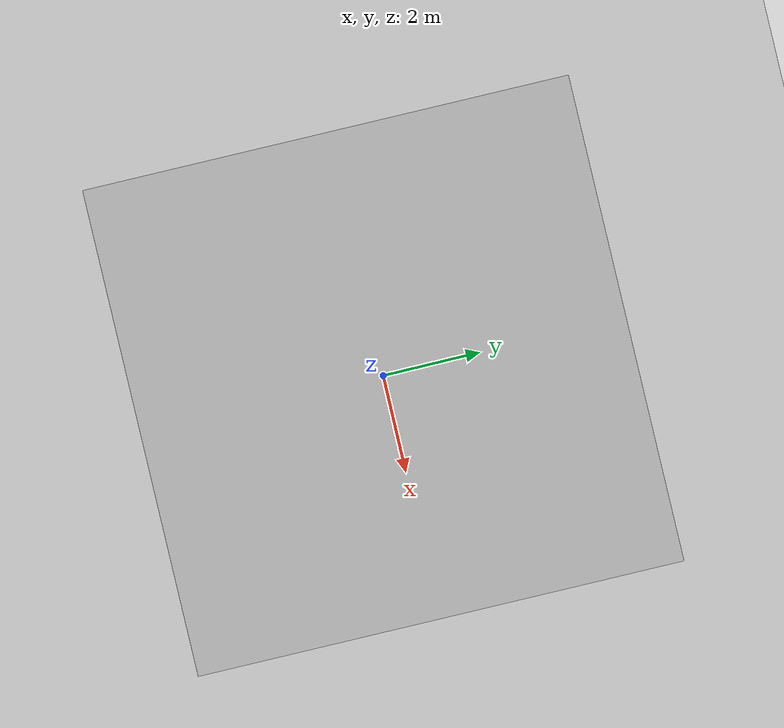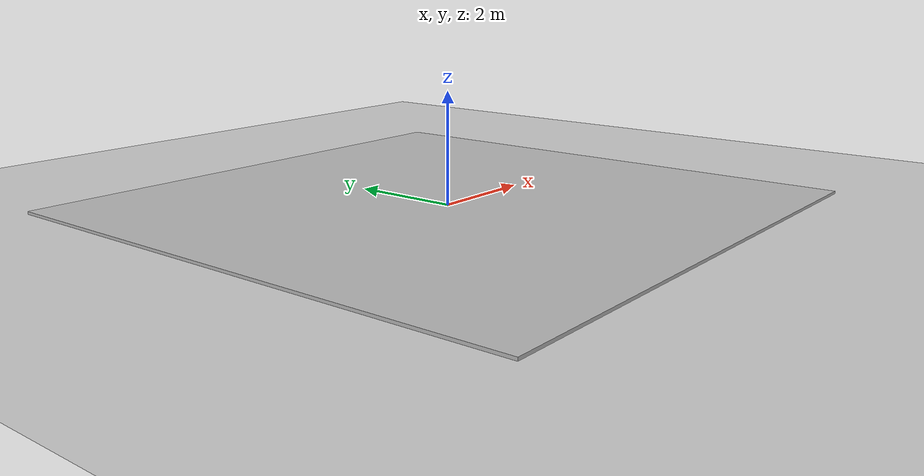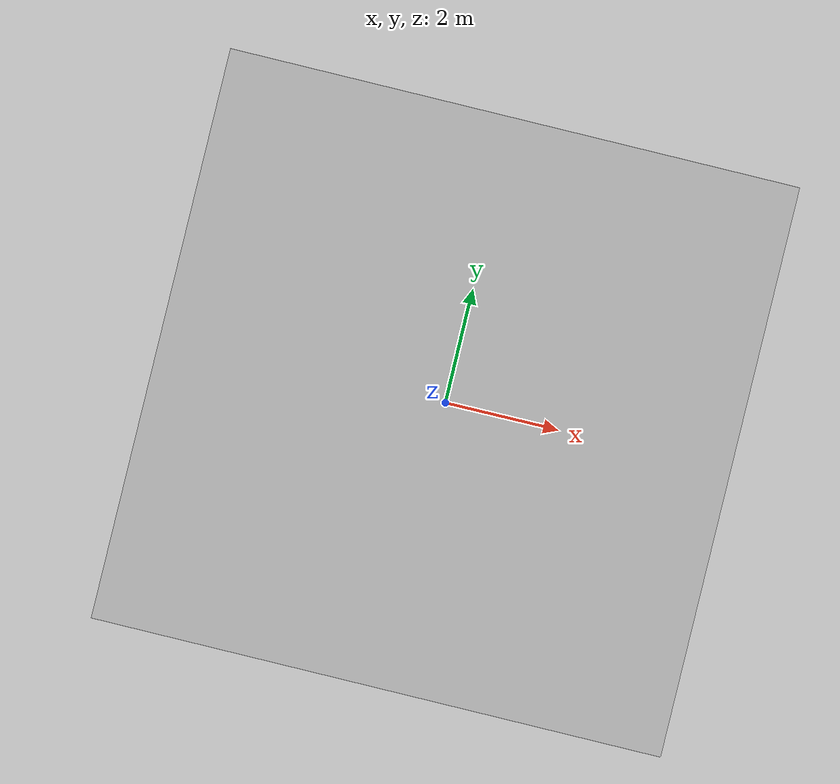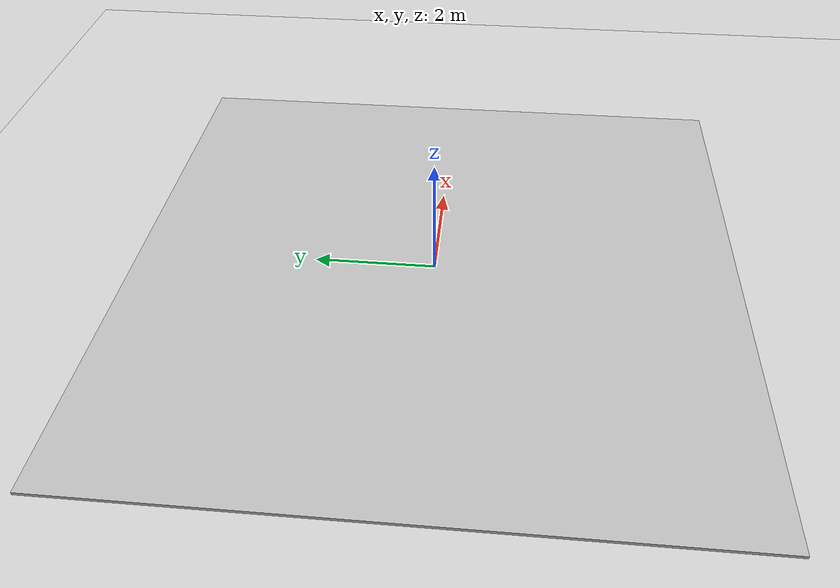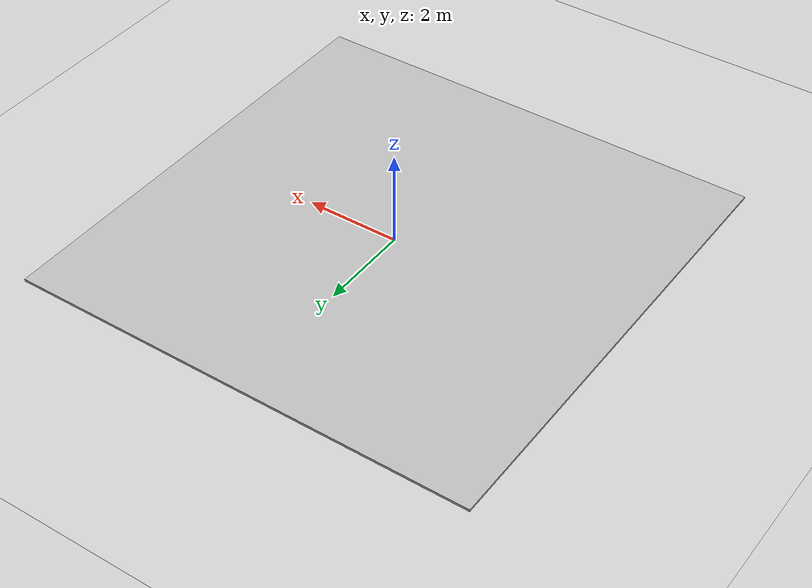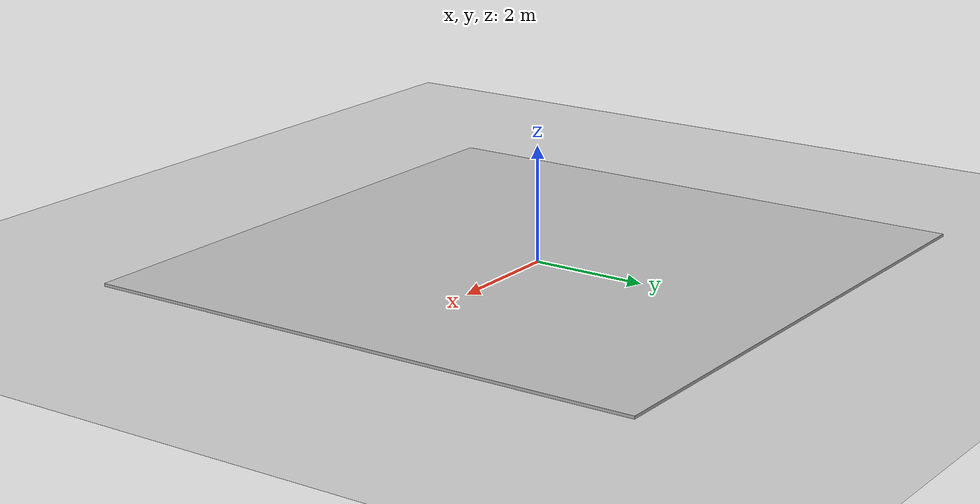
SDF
<?xml version="1.0" ?>
<sdf version="1.5">
  <world name="default">

    <!-- A global light source -->
    <scene>
	    <ambient>0.5 0.5 0.5 1.0</ambient>
	    <shadows>true</shadows>
    </scene>

    <include>
      <uri>model://sun</uri>
    </include>

    <!-- A ground plane -->
    <include>
      <uri>model://ground_plane</uri>
    </include>

    <!-- Coordinates -->
    <spherical_coordinates>
      <surface_model>EARTH_WGS84</surface_model>
      <latitude_deg>0</latitude_deg>
      <longitude_deg>0</longitude_deg>
      <elevation>0</elevation>
      <heading_deg>0</heading_deg>
    </spherical_coordinates>

    <!-- Camera -->
     <gui fullscreen='0'>
      <camera name='user_camera'>
        <pose>7.8971 -5.86361 6.86576 0 0.507643 2.3202</pose>
        <view_controller>orbit</view_controller>
        <projection_type>perspective</projection_type>
      </camera>
    </gui>

   <!-- Area de vuelo -->
    <include>
      <name>floor</name>
      <uri>model://floor</uri>
      <pose>0 0 0.05 0 0 0</pose>
    </include>

    <!-- Own physics settings to speed up simulation -->
    <physics type='ode'>
      <max_step_size>0.01</max_step_size>
      <real_time_factor>1</real_time_factor>
      <real_time_update_rate>100</real_time_update_rate>
      <gravity>0 0 -9.8</gravity>
    </physics>

 -->

    <plugin name="SIAM_God" filename="libSIAM_God.so"/>
  </world>
</sdf>

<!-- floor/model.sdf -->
<sdf version="1.5">

  <model name='floor'>
    <static>true</static>
    <link name='link'>
      <collision name='collisionsuelo'>
        <geometry>
          <box>
            <size>10 10 0.05</size>
          </box>
        </geometry>

        <surface>
          <friction>
            <ode>
              <mu>100.0</mu>
              <mu2>50.0</mu2>
              <slip1>0.0</slip1>
              <slip2>0.0</slip2>
            </ode>
          </friction>
        </surface>

      </collision>

      <visual name='visualsuelo'>
        <geometry>
          <box>
            <size>10 10 0.05</size>
          </box>
        </geometry>
        <material>
          <script>

            <uri>model://floor/scripts</uri>
            <uri>model://floor/materials</uri>
            <name>floorMat/Diffuse</name>
          </script>
        </material>
      </visual>
      <self_collide>0</self_collide>
      <kinematic>0</kinematic>
      <gravity>1</gravity>
    </link>
  </model>

</sdf>
